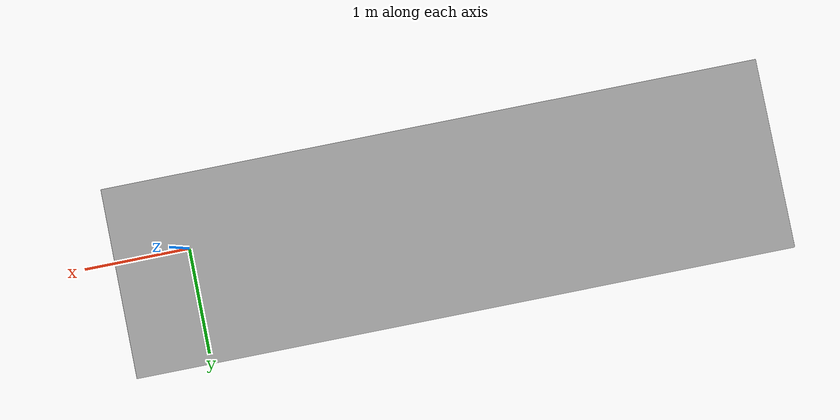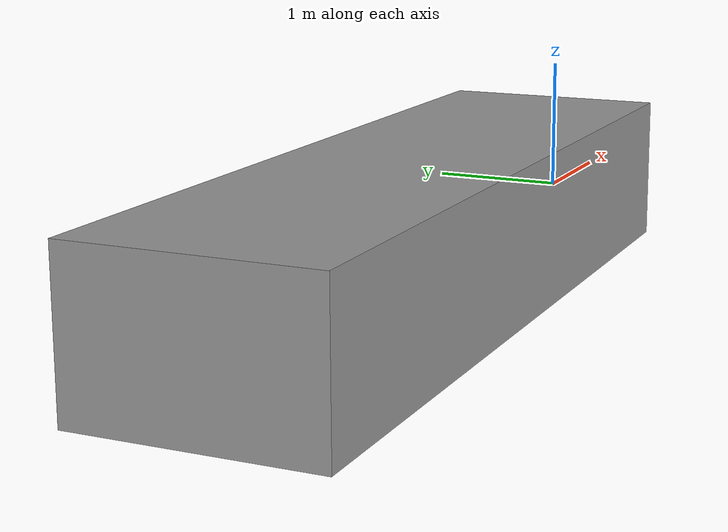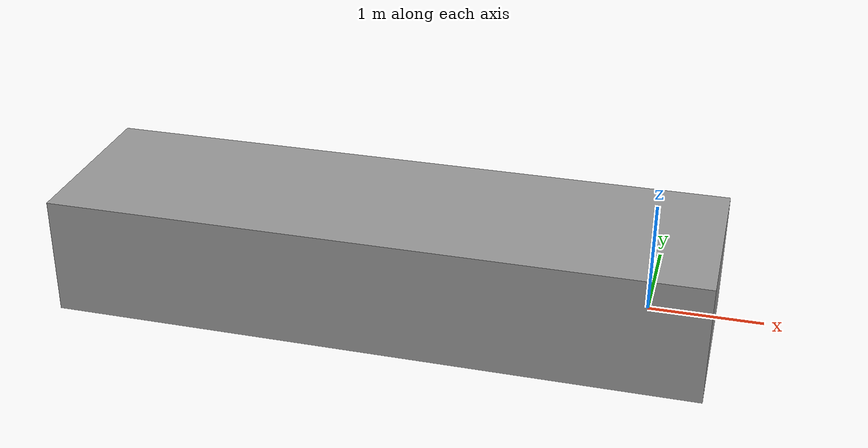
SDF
<?xml version='1.0'?>
<sdf version='1.6'>
  <model name='Thermal_Lab_Table'>
    <link name='link'>
      <inertial>
        <mass>11.5312</mass>
        <inertia>
          <ixx>4.05265</ixx>
          <ixy>0</ixy>
          <ixz>0</ixz>
          <iyy>35.8072</iyy>
          <iyz>0</iyz>
          <izz>37.4775</izz>
        </inertia>
        <pose frame=''>0 0 0 0 -0 0</pose>
      </inertial>
      <self_collide>0</self_collide>
      <enable_wind>0</enable_wind>
      <kinematic>0</kinematic>
      <pose frame=''>-2.42689 0.213226 0.079422 0 -0 0</pose>
      <visual name='visual'>
        <geometry>
          <box>
            <size>6.00195 1.72563 1.11338</size>
          </box>
        </geometry>
        <material>
          <script>
            <name>Gazebo/Grey</name>
            <uri>file://media/materials/scripts/gazebo.material</uri>
          </script>
        </material>
        <pose frame=''>0 0 0 0 -0 0</pose>
        <transparency>0</transparency>
        <cast_shadows>1</cast_shadows>
      </visual>
      <collision name='collision'>
        <laser_retro>0</laser_retro>
        <max_contacts>10</max_contacts>
        <pose frame=''>0 0 0 0 -0 0</pose>
        <geometry>
          <box>
            <size>6.00195 1.72563 1.11338</size>
          </box>
        </geometry>
        <surface>
          <friction>
            <ode>
              <mu>1</mu>
              <mu2>1</mu2>
              <fdir1>0 0 0</fdir1>
              <slip1>0</slip1>
              <slip2>0</slip2>
            </ode>
            <torsional>
              <coefficient>1</coefficient>
              <patch_radius>0</patch_radius>
              <surface_radius>0</surface_radius>
              <use_patch_radius>1</use_patch_radius>
              <ode>
                <slip>0</slip>
              </ode>
            </torsional>
          </friction>
          <bounce>
            <restitution_coefficient>0</restitution_coefficient>
            <threshold>1e+06</threshold>
          </bounce>
          <contact>
            <collide_without_contact>0</collide_without_contact>
            <collide_without_contact_bitmask>1</collide_without_contact_bitmask>
            <collide_bitmask>1</collide_bitmask>
            <ode>
              <soft_cfm>0</soft_cfm>
              <soft_erp>0.2</soft_erp>
              <kp>1e+13</kp>
              <kd>1</kd>
              <max_vel>0.01</max_vel>
              <min_depth>0</min_depth>
            </ode>
            <bullet>
              <split_impulse>1</split_impulse>
              <split_impulse_penetration_threshold>-0.01</split_impulse_penetration_threshold>
              <soft_cfm>0</soft_cfm>
              <soft_erp>0.2</soft_erp>
              <kp>1e+13</kp>
              <kd>1</kd>
            </bullet>
          </contact>
        </surface>
      </collision>
    </link>
    <static>1</static>
    <allow_auto_disable>1</allow_auto_disable>
  </model>
</sdf>
